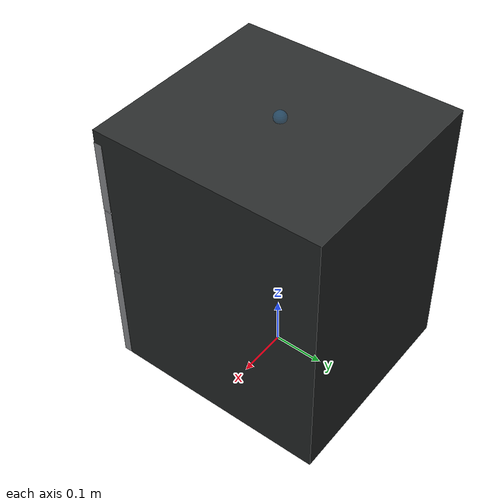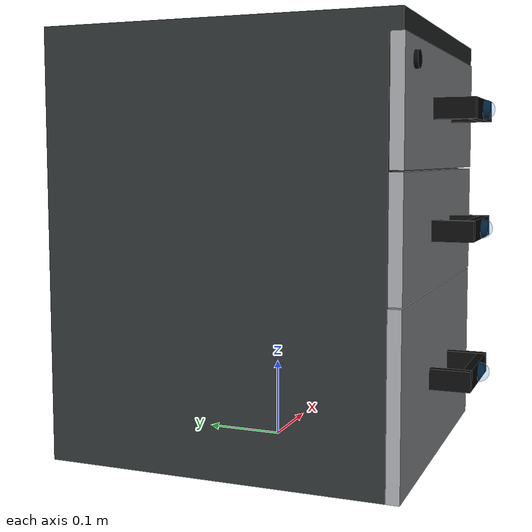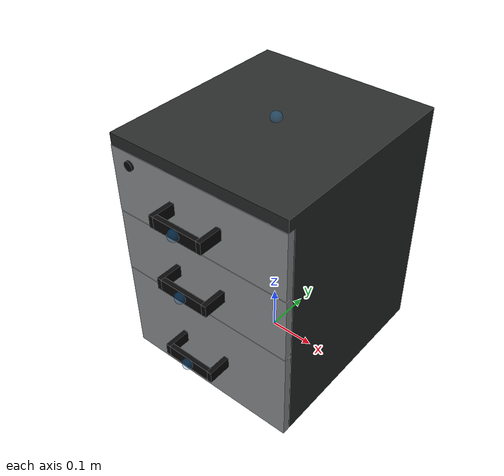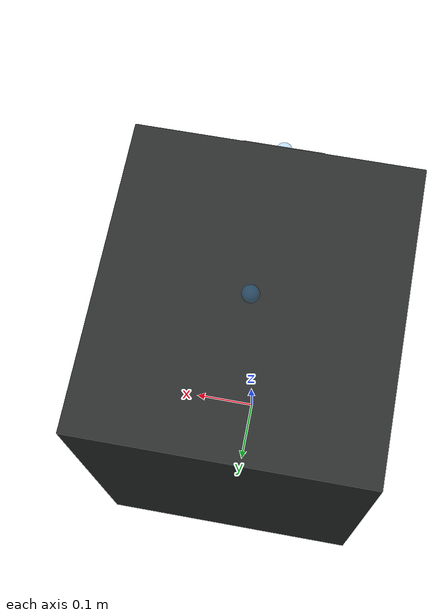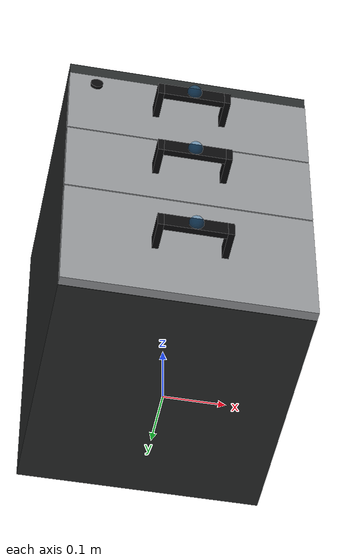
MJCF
<?xml version="1.0" encoding="utf-8"?>
<mujoco model="drawer">
  <compiler angle="radian" autolimits="true"/>

  <asset>
    <material name="drawer_cabinet_mat" rgba="0.16 0.17 0.17 1" specular="0.24" shininess="0.36" reflectance="0.02"/>
    <material name="drawer_front_mat" rgba="0.58 0.59 0.60 1" specular="0.30" shininess="0.44" reflectance="0.025"/>
    <material name="drawer_handle_mat" rgba="0.035 0.035 0.040 1" specular="0.34" shininess="0.50" reflectance="0.015"/>
    <texture name="drawer_bottom_oak_tex" type="2d" file="assets/textures/oak_veneer_01_diff_1k.png"/>
    <material name="drawer_bottom_oak_mat" texture="drawer_bottom_oak_tex" rgba="1 1 1 1"
              specular="0.12" shininess="0.18" reflectance="0.01" texuniform="false" texrepeat="1 1"/>

    <mesh name="drawer_base_visual_mesh" file="assets/visual/drawer_base.stl" scale="0.001 0.001 0.001"/>
    <mesh name="drawer_upper_visual_mesh" file="assets/visual/drawer_upper.stl" scale="0.001 0.001 0.001"/>
    <mesh name="drawer_middle_visual_mesh" file="assets/visual/drawer_middle.stl" scale="0.001 0.001 0.001"/>
    <mesh name="drawer_lower_visual_mesh" file="assets/visual/drawer_lower.stl" scale="0.001 0.001 0.001"/>
  </asset>

  <worldbody>
    <body name="object">
      <body name="cabinet">
        <inertial pos="0 0.008 0.265" mass="20" diaginertia="0.8 0.75 0.6"/>
        <geom name="cabinet_visual" type="mesh" mesh="drawer_base_visual_mesh"
              pos="-0.2 0.22 0" euler="1.570796327 0 0" material="drawer_cabinet_mat"
              group="1" contype="0" conaffinity="0" mass="0"/>

        <geom name="cabinet_left_collision" type="box" pos="-0.192 0.008 0.2525" size="0.008 0.212 0.2525"
              group="3" contype="1" conaffinity="1" condim="4" friction="0.9 0.04 0.01"
              solref="0.004 1" solimp="0.95 0.99 0.001" mass="0" rgba="0 0 0 0"/>
        <geom name="cabinet_right_collision" type="box" pos="0.192 0.008 0.2525" size="0.008 0.212 0.2525"
              group="3" contype="1" conaffinity="1" condim="4" friction="0.9 0.04 0.01"
              solref="0.004 1" solimp="0.95 0.99 0.001" mass="0" rgba="0 0 0 0"/>
        <geom name="cabinet_back_collision" type="box" pos="0 0.212 0.2525" size="0.184 0.008 0.2525"
              group="3" contype="1" conaffinity="1" condim="4" friction="0.9 0.04 0.01"
              solref="0.004 1" solimp="0.95 0.99 0.001" mass="0" rgba="0 0 0 0"/>
        <geom name="cabinet_bottom_collision" type="box" pos="0 0 0.0025" size="0.184 0.204 0.0025"
              group="3" contype="1" conaffinity="1" condim="4" friction="0.9 0.04 0.01"
              solref="0.004 1" solimp="0.95 0.99 0.001" mass="0" rgba="0 0 0 0"/>
        <geom name="cabinet_top_collision" type="box" pos="0 0 0.5175" size="0.2 0.22 0.0125"
              group="3" contype="1" conaffinity="1" condim="4" friction="0.9 0.04 0.01"
              solref="0.004 1" solimp="0.95 0.99 0.001" mass="0" rgba="0 0 0 0"/>
        <site name="cabinet_top_site" pos="0 0 0.535" size="0.012" rgba="0.1 0.6 1 0.25"/>

        <body name="lower_drawer">
          <joint name="lower_drawer_slide" type="slide" axis="0 -1 0" range="0 0.36"
                 damping="0.6" frictionloss="0.04" armature="0.005"/>
          <inertial pos="0 -0.033579 0.107" mass="5" diaginertia="0.09 0.07 0.13"/>
          <geom name="lower_drawer_visual" type="mesh" mesh="drawer_lower_visual_mesh"
                pos="-0.2 0.22 0" euler="1.570796327 0 0" material="drawer_front_mat"
                group="1" contype="0" conaffinity="0" mass="0"/>
          <geom name="lower_left_wall_visual" type="box" pos="-0.176 -0.000579 0.1045" size="0.0082 0.2042 0.0947"
                material="drawer_cabinet_mat" group="1" contype="0" conaffinity="0" mass="0"/>
          <geom name="lower_right_wall_visual" type="box" pos="0.176 -0.000579 0.1045" size="0.0082 0.2042 0.0947"
                material="drawer_cabinet_mat" group="1" contype="0" conaffinity="0" mass="0"/>
          <geom name="lower_rear_panel_visual" type="box" pos="0 0.195421 0.1045" size="0.168 0.008 0.0945"
                material="drawer_cabinet_mat" group="1" contype="0" conaffinity="0" mass="0"/>
          <geom name="lower_front_inner_wall_visual" type="box" pos="0 -0.196579 0.1045" size="0.168 0.008 0.0945"
                material="drawer_cabinet_mat" group="1" contype="0" conaffinity="0" mass="0"/>
          <geom name="lower_bottom_oak_visual" type="box" pos="0 -0.000579 0.0101" size="0.168 0.188 0.0001"
                material="drawer_bottom_oak_mat" group="1" contype="0" conaffinity="0" mass="0"/>

          <!-- The STL has no material slots, so these overlays preserve the black handle. -->
          <geom name="lower_handle_left_visual" type="box" pos="-0.055 -0.245579 0.1075" size="0.0052 0.0252 0.0127"
                material="drawer_handle_mat" group="1" contype="0" conaffinity="0" mass="0"/>
          <geom name="lower_handle_right_visual" type="box" pos="0.055 -0.245579 0.1075" size="0.0052 0.0252 0.0127"
                material="drawer_handle_mat" group="1" contype="0" conaffinity="0" mass="0"/>
          <geom name="lower_handle_grip_visual" type="box" pos="0 -0.265579 0.1075" size="0.0502 0.0052 0.0127"
                material="drawer_handle_mat" group="1" contype="0" conaffinity="0" mass="0"/>

          <geom name="lower_bottom_collision" type="box" pos="0 -0.000579 0.0075" size="0.184 0.204 0.0025"
                group="3" contype="1" conaffinity="1" condim="4" friction="0.9 0.04 0.01"
                solref="0.004 1" solimp="0.95 0.99 0.001" mass="0" rgba="0 0 0 0"/>
          <geom name="lower_left_wall_collision" type="box" pos="-0.176 -0.000579 0.1045" size="0.008 0.204 0.0945"
                group="3" contype="1" conaffinity="1" condim="4" friction="0.9 0.04 0.01"
                solref="0.004 1" solimp="0.95 0.99 0.001" mass="0" rgba="0 0 0 0"/>
          <geom name="lower_right_wall_collision" type="box" pos="0.176 -0.000579 0.1045" size="0.008 0.204 0.0945"
                group="3" contype="1" conaffinity="1" condim="4" friction="0.9 0.04 0.01"
                solref="0.004 1" solimp="0.95 0.99 0.001" mass="0" rgba="0 0 0 0"/>
          <geom name="lower_rear_panel_collision" type="box" pos="0 0.195421 0.1045" size="0.168 0.008 0.0945"
                group="3" contype="1" conaffinity="1" condim="4" friction="0.9 0.04 0.01"
                solref="0.004 1" solimp="0.95 0.99 0.001" mass="0" rgba="0 0 0 0"/>
          <geom name="lower_front_inner_wall_collision" type="box" pos="0 -0.196579 0.1045" size="0.168 0.008 0.0945"
                group="3" contype="1" conaffinity="1" condim="4" friction="0.9 0.04 0.01"
                solref="0.004 1" solimp="0.95 0.99 0.001" mass="0" rgba="0 0 0 0"/>
          <geom name="lower_front_collision" type="box" pos="0 -0.212579 0.107" size="0.2 0.008 0.107"
                group="3" contype="1" conaffinity="1" condim="4" friction="0.9 0.04 0.01"
                solref="0.004 1" solimp="0.95 0.99 0.001" mass="0" rgba="0 0 0 0"/>
          <geom name="lower_handle_left_collision" type="box" pos="-0.055 -0.245579 0.1075" size="0.005 0.025 0.0125"
                group="3" contype="1" conaffinity="1" condim="4" friction="1.1 0.05 0.01"
                solref="0.004 1" solimp="0.95 0.99 0.001" mass="0" rgba="0 0 0 0"/>
          <geom name="lower_handle_right_collision" type="box" pos="0.055 -0.245579 0.1075" size="0.005 0.025 0.0125"
                group="3" contype="1" conaffinity="1" condim="4" friction="1.1 0.05 0.01"
                solref="0.004 1" solimp="0.95 0.99 0.001" mass="0" rgba="0 0 0 0"/>
          <geom name="lower_handle_grip_collision" type="box" pos="0 -0.265579 0.1075" size="0.05 0.005 0.0125"
                group="3" contype="1" conaffinity="1" condim="4" friction="1.1 0.05 0.01"
                solref="0.004 1" solimp="0.95 0.99 0.001" mass="0" rgba="0 0 0 0"/>
          <site name="lower_drawer_handle_site" pos="0 -0.272 0.1075" size="0.012" rgba="0.1 0.6 1 0.25"/>
        </body>

        <body name="middle_drawer">
          <joint name="middle_drawer_slide" type="slide" axis="0 -1 0" range="0 0.36"
                 damping="0.6" frictionloss="0.04" armature="0.005"/>
          <inertial pos="0 -0.034073 0.2875" mass="4" diaginertia="0.082 0.061 0.128"/>
          <geom name="middle_drawer_visual" type="mesh" mesh="drawer_middle_visual_mesh"
                pos="-0.2 0.22 0" euler="1.570796327 0 0" material="drawer_front_mat"
                group="1" contype="0" conaffinity="0" mass="0"/>
          <geom name="middle_left_wall_visual" type="box" pos="-0.176 -0.001073 0.2845" size="0.0082 0.2042 0.0597"
                material="drawer_cabinet_mat" group="1" contype="0" conaffinity="0" mass="0"/>
          <geom name="middle_right_wall_visual" type="box" pos="0.176 -0.001073 0.2845" size="0.0082 0.2042 0.0597"
                material="drawer_cabinet_mat" group="1" contype="0" conaffinity="0" mass="0"/>
          <geom name="middle_rear_panel_visual" type="box" pos="0 0.194927 0.2845" size="0.168 0.008 0.0595"
                material="drawer_cabinet_mat" group="1" contype="0" conaffinity="0" mass="0"/>
          <geom name="middle_front_inner_wall_visual" type="box" pos="0 -0.197073 0.2845" size="0.168 0.008 0.0595"
                material="drawer_cabinet_mat" group="1" contype="0" conaffinity="0" mass="0"/>
          <geom name="middle_bottom_oak_visual" type="box" pos="0 -0.001073 0.2251" size="0.168 0.188 0.0001"
                material="drawer_bottom_oak_mat" group="1" contype="0" conaffinity="0" mass="0"/>

          <geom name="middle_handle_left_visual" type="box" pos="-0.055 -0.246073 0.2875" size="0.0052 0.0252 0.0127"
                material="drawer_handle_mat" group="1" contype="0" conaffinity="0" mass="0"/>
          <geom name="middle_handle_right_visual" type="box" pos="0.055 -0.246073 0.2875" size="0.0052 0.0252 0.0127"
                material="drawer_handle_mat" group="1" contype="0" conaffinity="0" mass="0"/>
          <geom name="middle_handle_grip_visual" type="box" pos="0 -0.266073 0.2875" size="0.0502 0.0052 0.0127"
                material="drawer_handle_mat" group="1" contype="0" conaffinity="0" mass="0"/>

          <geom name="middle_bottom_collision" type="box" pos="0 -0.001073 0.2225" size="0.184 0.204 0.0025"
                group="3" contype="1" conaffinity="1" condim="4" friction="0.9 0.04 0.01"
                solref="0.004 1" solimp="0.95 0.99 0.001" mass="0" rgba="0 0 0 0"/>
          <geom name="middle_left_wall_collision" type="box" pos="-0.176 -0.001073 0.2845" size="0.008 0.204 0.0595"
                group="3" contype="1" conaffinity="1" condim="4" friction="0.9 0.04 0.01"
                solref="0.004 1" solimp="0.95 0.99 0.001" mass="0" rgba="0 0 0 0"/>
          <geom name="middle_right_wall_collision" type="box" pos="0.176 -0.001073 0.2845" size="0.008 0.204 0.0595"
                group="3" contype="1" conaffinity="1" condim="4" friction="0.9 0.04 0.01"
                solref="0.004 1" solimp="0.95 0.99 0.001" mass="0" rgba="0 0 0 0"/>
          <geom name="middle_rear_panel_collision" type="box" pos="0 0.194927 0.2845" size="0.168 0.008 0.0595"
                group="3" contype="1" conaffinity="1" condim="4" friction="0.9 0.04 0.01"
                solref="0.004 1" solimp="0.95 0.99 0.001" mass="0" rgba="0 0 0 0"/>
          <geom name="middle_front_inner_wall_collision" type="box" pos="0 -0.197073 0.2845" size="0.168 0.008 0.0595"
                group="3" contype="1" conaffinity="1" condim="4" friction="0.9 0.04 0.01"
                solref="0.004 1" solimp="0.95 0.99 0.001" mass="0" rgba="0 0 0 0"/>
          <geom name="middle_front_collision" type="box" pos="0 -0.213073 0.2875" size="0.2 0.008 0.0715"
                group="3" contype="1" conaffinity="1" condim="4" friction="0.9 0.04 0.01"
                solref="0.004 1" solimp="0.95 0.99 0.001" mass="0" rgba="0 0 0 0"/>
          <geom name="middle_handle_left_collision" type="box" pos="-0.055 -0.246073 0.2875" size="0.005 0.025 0.0125"
                group="3" contype="1" conaffinity="1" condim="4" friction="1.1 0.05 0.01"
                solref="0.004 1" solimp="0.95 0.99 0.001" mass="0" rgba="0 0 0 0"/>
          <geom name="middle_handle_right_collision" type="box" pos="0.055 -0.246073 0.2875" size="0.005 0.025 0.0125"
                group="3" contype="1" conaffinity="1" condim="4" friction="1.1 0.05 0.01"
                solref="0.004 1" solimp="0.95 0.99 0.001" mass="0" rgba="0 0 0 0"/>
          <geom name="middle_handle_grip_collision" type="box" pos="0 -0.266073 0.2875" size="0.05 0.005 0.0125"
                group="3" contype="1" conaffinity="1" condim="4" friction="1.1 0.05 0.01"
                solref="0.004 1" solimp="0.95 0.99 0.001" mass="0" rgba="0 0 0 0"/>
          <site name="middle_drawer_handle_site" pos="0 -0.2725 0.2875" size="0.012" rgba="0.1 0.6 1 0.25"/>
        </body>

        <body name="upper_drawer">
          <joint name="upper_drawer_slide" type="slide" axis="0 -1 0" range="0 0.36"
                 damping="0.6" frictionloss="0.04" armature="0.005"/>
          <inertial pos="0 -0.034462 0.433" mass="4" diaginertia="0.082 0.061 0.128"/>
          <geom name="upper_drawer_visual" type="mesh" mesh="drawer_upper_visual_mesh"
                pos="-0.2 0.22 0" euler="1.570796327 0 0" material="drawer_front_mat"
                group="1" contype="0" conaffinity="0" mass="0"/>
          <geom name="upper_left_wall_visual" type="box" pos="-0.176 -0.001462 0.4295" size="0.0082 0.2042 0.0597"
                material="drawer_cabinet_mat" group="1" contype="0" conaffinity="0" mass="0"/>
          <geom name="upper_right_wall_visual" type="box" pos="0.176 -0.001462 0.4295" size="0.0082 0.2042 0.0597"
                material="drawer_cabinet_mat" group="1" contype="0" conaffinity="0" mass="0"/>
          <geom name="upper_rear_panel_visual" type="box" pos="0 0.194538 0.4295" size="0.168 0.008 0.0595"
                material="drawer_cabinet_mat" group="1" contype="0" conaffinity="0" mass="0"/>
          <geom name="upper_front_inner_wall_visual" type="box" pos="0 -0.197462 0.4295" size="0.168 0.008 0.0595"
                material="drawer_cabinet_mat" group="1" contype="0" conaffinity="0" mass="0"/>
          <geom name="upper_bottom_oak_visual" type="box" pos="0 -0.001462 0.3701" size="0.168 0.188 0.0001"
                material="drawer_bottom_oak_mat" group="1" contype="0" conaffinity="0" mass="0"/>

          <geom name="upper_handle_left_visual" type="box" pos="-0.055 -0.246462 0.4325" size="0.0052 0.0252 0.0127"
                material="drawer_handle_mat" group="1" contype="0" conaffinity="0" mass="0"/>
          <geom name="upper_handle_right_visual" type="box" pos="0.055 -0.246462 0.4325" size="0.0052 0.0252 0.0127"
                material="drawer_handle_mat" group="1" contype="0" conaffinity="0" mass="0"/>
          <geom name="upper_handle_grip_visual" type="box" pos="0 -0.266462 0.4325" size="0.0502 0.0052 0.0127"
                material="drawer_handle_mat" group="1" contype="0" conaffinity="0" mass="0"/>
          <geom name="upper_lock_visual" type="cylinder" pos="-0.155 -0.223962 0.48" euler="1.570796327 0 0"
                size="0.0102 0.0027" material="drawer_handle_mat" group="1" contype="0" conaffinity="0" mass="0"/>

          <geom name="upper_bottom_collision" type="box" pos="0 -0.001462 0.3675" size="0.184 0.204 0.0025"
                group="3" contype="1" conaffinity="1" condim="4" friction="0.9 0.04 0.01"
                solref="0.004 1" solimp="0.95 0.99 0.001" mass="0" rgba="0 0 0 0"/>
          <geom name="upper_left_wall_collision" type="box" pos="-0.176 -0.001462 0.4295" size="0.008 0.204 0.0595"
                group="3" contype="1" conaffinity="1" condim="4" friction="0.9 0.04 0.01"
                solref="0.004 1" solimp="0.95 0.99 0.001" mass="0" rgba="0 0 0 0"/>
          <geom name="upper_right_wall_collision" type="box" pos="0.176 -0.001462 0.4295" size="0.008 0.204 0.0595"
                group="3" contype="1" conaffinity="1" condim="4" friction="0.9 0.04 0.01"
                solref="0.004 1" solimp="0.95 0.99 0.001" mass="0" rgba="0 0 0 0"/>
          <geom name="upper_rear_panel_collision" type="box" pos="0 0.194538 0.4295" size="0.168 0.008 0.0595"
                group="3" contype="1" conaffinity="1" condim="4" friction="0.9 0.04 0.01"
                solref="0.004 1" solimp="0.95 0.99 0.001" mass="0" rgba="0 0 0 0"/>
          <geom name="upper_front_inner_wall_collision" type="box" pos="0 -0.197462 0.4295" size="0.168 0.008 0.0595"
                group="3" contype="1" conaffinity="1" condim="4" friction="0.9 0.04 0.01"
                solref="0.004 1" solimp="0.95 0.99 0.001" mass="0" rgba="0 0 0 0"/>
          <geom name="upper_front_collision" type="box" pos="0 -0.213462 0.433" size="0.2 0.008 0.072"
                group="3" contype="1" conaffinity="1" condim="4" friction="0.9 0.04 0.01"
                solref="0.004 1" solimp="0.95 0.99 0.001" mass="0" rgba="0 0 0 0"/>
          <geom name="upper_handle_left_collision" type="box" pos="-0.055 -0.246462 0.4325" size="0.005 0.025 0.0125"
                group="3" contype="1" conaffinity="1" condim="4" friction="1.1 0.05 0.01"
                solref="0.004 1" solimp="0.95 0.99 0.001" mass="0" rgba="0 0 0 0"/>
          <geom name="upper_handle_right_collision" type="box" pos="0.055 -0.246462 0.4325" size="0.005 0.025 0.0125"
                group="3" contype="1" conaffinity="1" condim="4" friction="1.1 0.05 0.01"
                solref="0.004 1" solimp="0.95 0.99 0.001" mass="0" rgba="0 0 0 0"/>
          <geom name="upper_handle_grip_collision" type="box" pos="0 -0.266462 0.4325" size="0.05 0.005 0.0125"
                group="3" contype="1" conaffinity="1" condim="4" friction="1.1 0.05 0.01"
                solref="0.004 1" solimp="0.95 0.99 0.001" mass="0" rgba="0 0 0 0"/>
          <geom name="upper_lock_collision" type="cylinder" pos="-0.155 -0.223962 0.48" euler="1.570796327 0 0" size="0.01 0.0025"
                group="3" contype="1" conaffinity="1" condim="4" friction="0.9 0.04 0.01"
                solref="0.004 1" solimp="0.95 0.99 0.001" mass="0" rgba="0 0 0 0"/>
          <site name="upper_drawer_handle_site" pos="0 -0.273 0.4325" size="0.012" rgba="0.1 0.6 1 0.25"/>
        </body>
      </body>
    </body>
  </worldbody>

  <contact>
    <exclude body1="cabinet" body2="lower_drawer"/>
    <exclude body1="cabinet" body2="middle_drawer"/>
    <exclude body1="cabinet" body2="upper_drawer"/>
    <exclude body1="lower_drawer" body2="middle_drawer"/>
    <exclude body1="lower_drawer" body2="upper_drawer"/>
    <exclude body1="middle_drawer" body2="upper_drawer"/>
  </contact>
</mujoco>
